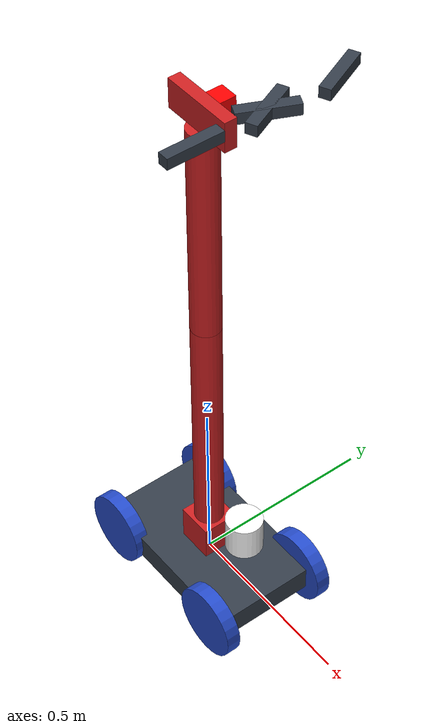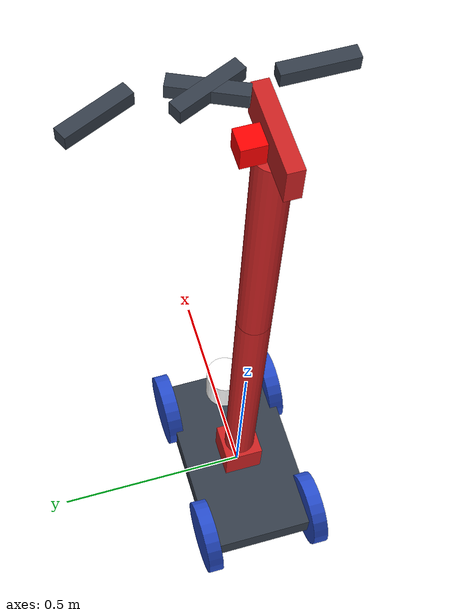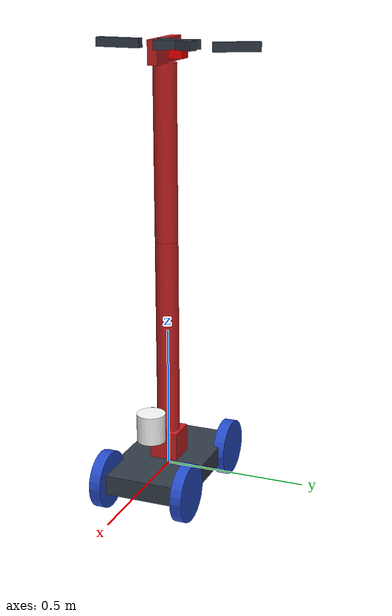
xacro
<?xml version="1.0" ?>
<robot name="my_robot">
    <material name="black">
        <color rgba="0.0 0.0 0.0 1.0" />
    </material>
    <material name="blue">
        <color rgba="0.203125 0.23828125 0.28515625 1.0" />
    </material>
    <material name="green">
        <color rgba="0.0 0.8 0.0 1.0" />
    </material>
    <material name="grey">
        <color rgba="0.2 0.2 0.2 1.0" />
    </material>
    <material name="orange">
        <color rgba="1.0 0.423529411765 0.0392156862745 1.0" />
    </material>
    <material name="brown">
        <color rgba="0.870588235294 0.811764705882 0.764705882353 1.0" />
    </material>
    <material name="red">
        <color rgba="0.80078125 0.12890625 0.1328125 1.0" />
    </material>
    <material name="white">
        <color rgba="1.0 1.0 1.0 1.0" />
    </material>
    <gazebo reference="base_link">
        <material>Gazebo/Orange</material>
    </gazebo>
    <gazebo reference="link_left_wheel">
        <material>Gazebo/Blue</material>
    </gazebo>
    <gazebo reference="link_right_wheel">
        <material>Gazebo/Blue</material>
    </gazebo>
    <gazebo reference="link_frontleft_wheel">
        <material>Gazebo/Blue</material>
    </gazebo>
    <gazebo reference="link_frontright_wheel">
        <material>Gazebo/Blue</material>
    </gazebo>
    <gazebo reference="arm_base_link">
        <material>Gazebo/Red</material>
    </gazebo>
    <gazebo reference="arm_link_01">
        <material>Gazebo/Red</material>
    </gazebo>
    <gazebo reference="arm_link_02">
        <material>Gazebo/Red</material>
    </gazebo>
    <gazebo reference="arm_link_03">
        <material>Gazebo/Red</material>
    </gazebo>
    <gazebo reference="arm_link_03">
        <material>Gazebo/Red</material>
    </gazebo>
    <gazebo reference="camera_link">
        <material>Gazebo/White</material>
    </gazebo>
    <gazebo reference="arm_joint_02">
        <provideFeedback>true</provideFeedback>
    </gazebo>
    <!-- The ft_sensor plugin -->
    <gazebo>
        <plugin filename="libgazebo_ros_ft_sensor.so" name="ft_sensor">
            <updateRate>100.0</updateRate>
            <topicName>ft_sensor_topic</topicName>
            <jointName>arm_joint_02</jointName>
        </plugin>
    </gazebo>
    <gazebo>
        <plugin filename="libgazebo_ros_skid_steer_drive.so" name="skid_steer_drive_controller">
            <updateRate>100.0</updateRate>
            <robotNamespace>/</robotNamespace>
            <leftFrontJoint>joint_frontright_wheel</leftFrontJoint>
            <rightFrontJoint>joint_frontleft_wheel</rightFrontJoint>
            <leftRearJoint>joint_right_wheel</leftRearJoint>
            <rightRearJoint>joint_left_wheel</rightRearJoint>
            <wheelSeparation>0.4</wheelSeparation>
            <wheelDiameter>0.215</wheelDiameter>
            <robotBaseFrame>base_link</robotBaseFrame>
            <torque>20</torque>
            <topicName>cmd_vel</topicName>
            <broadcastTF>true</broadcastTF>
            <publishOdomTF>true</publishOdomTF>
        </plugin>
    </gazebo>
    <gazebo reference="laser">
        <sensor name="head_hokuyo_sensor" type="ray">
            <pose>0 0 0 0 0 0</pose>
            <visualize>false</visualize>
            <update_rate>20</update_rate>
            <ray>
                <scan>
                    <horizontal>
                        <samples>720</samples>
                        <resolution>1</resolution>
                        <min_angle>-1.570796</min_angle>
                        <max_angle>1.570796</max_angle>
                    </horizontal>
                </scan>
                <range>
                    <min>0.10</min>
                    <max>10.0</max>
                    <resolution>0.01</resolution>
                </range>
                <noise>
                    <type>gaussian</type>
                    <mean>0.0</mean>
                    <stddev>0.01</stddev>
                </noise>
            </ray>
            <plugin filename="libgazebo_ros_laser.so" name="gazebo_ros_head_hokuyo_controller">
                <topicName>my_robot/laser/scan</topicName>
                <frameName>laser</frameName>
            </plugin>
        </sensor>
    </gazebo>
    <gazebo>
        <plugin filename="libgazebo_ros_control.so" name="gazebo_ros_control">
            <robotNamespace>my_robot</robotNamespace>
            <robotSimType>gazebo_ros_control/DefaultRobotHWSim</robotSimType>
            <legacyModeNS>true</legacyModeNS>
        </plugin>
    </gazebo>
    <!-- camera -->
    <gazebo reference="camera_link">
        <sensor name="camera1" type="camera">
            <update_rate>30.0</update_rate>
            <camera name="head">
                <horizontal_fov>1.3962634</horizontal_fov>
                <image>
                    <width>800</width>
                    <height>800</height>
                    <format>R8G8B8</format>
                </image>
                <clip>
                    <near>0.02</near>
                    <far>300</far>
                </clip>
                <noise>
                    <type>gaussian</type>
                    <mean>0.0</mean>
                    <stddev>0.007</stddev>
                </noise>
            </camera>
            <plugin filename="libgazebo_ros_camera.so" name="camera_controller">
                <alwaysOn>true</alwaysOn>
                <updateRate>0.0</updateRate>
                <cameraName>robot/camera1</cameraName>
                <imageTopicName>image_raw</imageTopicName>
                <cameraInfoTopicName>camera_info</cameraInfoTopicName>
                <frameName>camera_link</frameName>
                <hackBaseline>0.07</hackBaseline>
                <distortionK1>0.0</distortionK1>
                <distortionK2>0.0</distortionK2>
                <distortionK3>0.0</distortionK3>
                <distortionT1>0.0</distortionT1>
                <distortionT2>0.0</distortionT2>
            </plugin>
        </sensor>
    </gazebo>
    <link name="base_link">
        <!-- pose and inertial -->
        <pose>0 0 0.1 0 0 0</pose>

        <inertial>
            <mass value="5" />
            <origin rpy="0 0 0" xyz="0 0 0.1" />
            <inertia ixx="0.0395416666667" ixy="0" ixz="0" iyy="0.106208333333" iyz="0" izz="0.106208333333" />
        </inertial>

        <collision name="collision_chassis">
            <geometry>
                <box size="0.5 0.3 0.07" />
            </geometry>
        </collision>
        <visual>
            <origin rpy="0 0 0" xyz="0 0 0" />
            <geometry>
                <box size="0.5 0.3 0.07" />
            </geometry>
            <material name="blue" />
        </visual>
    </link>
    <!-- Create wheels -->
    <link name="link_right_wheel">

        <inertial>
            <mass value="0.2" />
            <origin rpy="0 1.5707 1.5707" xyz="0 0 0" />
            <inertia ixx="0.000526666666667" ixy="0" ixz="0" iyy="0.000526666666667" iyz="0" izz="0.001" />
        </inertial>

        <collision name="link_right_wheel_collision">
            <origin rpy="0 1.5707 1.5707" xyz="0 0 0" />
            <geometry>
                <cylinder length="0.04" radius="0.1" />
            </geometry>
        </collision>
        <visual name="link_right_wheel_visual">
            <origin rpy="0 1.5707 1.5707" xyz="0 0 0" />
            <geometry>
                <cylinder length="0.04" radius="0.1" />
            </geometry>
        </visual>
    </link>
    <link name="link_left_wheel">

        <inertial>
            <mass value="0.2" />
            <origin rpy="0 1.5707 1.5707" xyz="0 0 0" />
            <inertia ixx="0.000526666666667" ixy="0" ixz="0" iyy="0.000526666666667" iyz="0" izz="0.001" />
        </inertial>

        <collision name="link_right_wheel_collision">
            <origin rpy="0 1.5707 1.5707" xyz="0 0 0" />
            <geometry>
                <cylinder length="0.04" radius="0.1" />
            </geometry>
        </collision>
        <visual name="link_left_wheel_visual">
            <origin rpy="0 1.5707 1.5707" xyz="0 0 0" />
            <geometry>
                <cylinder length="0.04" radius="0.1" />
            </geometry>
        </visual>
    </link>
    <link name="link_frontright_wheel">

        <inertial>
            <mass value="0.2" />
            <origin rpy="0 1.5707 1.5707" xyz="0 0 0" />
            <inertia ixx="0.000526666666667" ixy="0" ixz="0" iyy="0.000526666666667" iyz="0" izz="0.001" />
        </inertial>

        <collision name="link_right_wheel_collision">
            <origin rpy="0 1.5707 1.5707" xyz="0 0 0" />
            <geometry>
                <cylinder length="0.04" radius="0.1" />
            </geometry>
        </collision>
        <visual name="link_frontright_wheel_visual">
            <origin rpy="0 1.5707 1.5707" xyz="0 0 0" />
            <geometry>
                <cylinder length="0.04" radius="0.1" />
            </geometry>
        </visual>
    </link>
    <link name="link_frontleft_wheel">

        <inertial>
            <mass value="0.2" />
            <origin rpy="0 1.5707 1.5707" xyz="0 0 0" />
            <inertia ixx="0.000526666666667" ixy="0" ixz="0" iyy="0.000526666666667" iyz="0" izz="0.001" />
        </inertial>

        <collision name="link_right_wheel_collision">
            <origin rpy="0 1.5707 1.5707" xyz="0 0 0" />
            <geometry>
                <cylinder length="0.04" radius="0.1" />
            </geometry>
        </collision>
        <visual name="link_frontleft_wheel_visual">
            <origin rpy="0 1.5707 1.5707" xyz="0 0 0" />
            <geometry>
                <cylinder length="0.04" radius="0.1" />
            </geometry>
        </visual>
    </link>
    <joint name="joint_right_wheel" type="continuous">
        <origin rpy="0 0 0" xyz="-0.20 0.15 0" />
        <child link="link_right_wheel" />
        <parent link="base_link" />
        <axis rpy="0 0 0" xyz="0 1 0" />
        <limit effort="10000" velocity="1000" />
        <joint_properties damping="1.0" friction="1.0" />
    </joint>
    <joint name="joint_left_wheel" type="continuous">
        <origin rpy="0 0 0" xyz="-0.20 -0.15 0" />
        <child link="link_left_wheel" />
        <parent link="base_link" />
        <axis rpy="0 0 0" xyz="0 1 0" />
        <limit effort="10000" velocity="1000" />
        <joint_properties damping="1.0" friction="1.0" />
    </joint>
    <joint name="joint_frontright_wheel" type="continuous">
        <origin rpy="0 0 0" xyz="0.20 0.15 0" />
        <child link="link_frontright_wheel" />
        <parent link="base_link" />
        <axis rpy="0 0 0" xyz="0 1 0" />
        <limit effort="10000" velocity="1000" />
        <joint_properties damping="1.0" friction="1.0" />
    </joint>
    <joint name="joint_frontleft_wheel" type="continuous">
        <origin rpy="0 0 0" xyz="0.20 -0.15 0" />
        <child link="link_frontleft_wheel" />
        <parent link="base_link" />
        <axis rpy="0 0 0" xyz="0 1 0" />
        <limit effort="10000" velocity="1000" />
        <joint_properties damping="1.0" friction="1.0" />
    </joint>
    <link name="laser">

        <inertial>
            <origin rpy="0 0 0" xyz="0 0 0" />
            <mass value="1" />
            <inertia ixx="0.0014583333333333334" ixy="0" ixz="0" iyy="0.0014583333333333334" iyz="0" izz="0.0012500000000000002" />
        </inertial>

        <visual>
            <origin rpy="0 0 0" xyz="0 0 0" />
            <geometry>
                <cylinder length="0.1" radius="0.05" />
            </geometry>
            <material name="white" />
        </visual>
        <collision>
            <origin rpy="0 0 0" xyz="0 0 0" />
            <geometry>
                <cylinder length="0.1" radius="0.05" />
            </geometry>
        </collision>
    </link>
    <joint name="joint_laser" type="fixed">
        <origin rpy="0 0 0" xyz="0.15 0 0.20" />
        <parent link="base_link" />
        <child link="laser" />
    </joint>
    <!--arm definition -->
    <link name="arm_base_link">

        <inertial>
            <mass value="0.1" />
            <origin rpy="0 0 0" xyz="0 0 0" />
            <inertia ixx="0.0000416666667" ixy="0" ixz="0" iyy="0.0000416666667" iyz="0" izz="0.0000416666667" />
        </inertial>

        <collision>
            <origin rpy="0 0 0" xyz="0 0 0" />
            <geometry>
                <box size="0.1 0.1 0.1" />
            </geometry>
        </collision>
        <visual>
            <origin rpy="0 0 0" xyz="0 0 0" />
            <geometry>
                <box size="0.1 0.1 0.1" />
            </geometry>
            <material name="red" />
        </visual>
    </link>
    <joint name="arm_base_to_base" type="fixed">
        <origin rpy="0 0 0" xyz="0 0 0.085" />
        <parent link="base_link" />
        <child link="arm_base_link" />
    </joint>
    <link name="arm_link_01">

        <inertial>
            <mass value="0.025" />
            <origin rpy="0 0 0" xyz="0 0 0" />
            <inertia ixx="0.000010279" ixy="0" ixz="0" iyy="0.000010279" iyz="0" izz="0.000007225" />
        </inertial>

        <collision>
            <origin rpy="0 0 0" xyz="0 0 0.30" />
            <geometry>
                <cylinder length="0.70" radius="0.04" />
            </geometry>
        </collision>
        <visual>
            <origin rpy="0 0 0" xyz="0 0 0.30" />
            <geometry>
                <cylinder length="0.70" radius="0.04" />
            </geometry>
            <material name="red" />
        </visual>
    </link>
    <joint name="arm_joint_01" type="revolute">
        <axis xyz="0 0 1" />
        <limit effort="1000.0" lower="-3.14" upper="3.14" velocity="0.2" />
        <origin rpy="0 0 0" xyz="0 0 0.09" />
        <parent link="arm_base_link" />
        <child link="arm_link_01" />
    </joint>
    <link name="arm_link_02">

        <inertial>
            <mass value="0.025" />
            <origin rpy="0 0 0" xyz="0 0 0" />
            <inertia ixx="0.000010279" ixy="0" ixz="0" iyy="0.000010279" iyz="0" izz="0.000007225" />
        </inertial>

        <collision>
            <origin rpy="0 0 0" xyz="0 0 0.30" />
            <geometry>
                <cylinder length="0.6" radius="0.04" />
            </geometry>
        </collision>
        <visual>
            <origin rpy="0 0 0" xyz="0 0 0.30" />
            <geometry>
                <cylinder length="0.6" radius="0.04" />
            </geometry>
            <material name="red" />
        </visual>
    </link>
    <joint name="arm_joint_02" type="revolute">
        <axis xyz="1 0 0" />
        <limit effort="1000.0" lower="-1.8" upper="1.8" velocity="0.2" />
        <origin rpy="0 0 0" xyz="0 0 0.65" />
        <parent link="arm_link_01" />
        <child link="arm_link_02" />
    </joint>
    <link name="arm_link_03">

    <inertial>
            <mass value="0.025" />
            <origin rpy="0 0 0" xyz="0 0 0" />
            <inertia ixx="0.000010279" ixy="0" ixz="0" iyy="0.000010279" iyz="0" izz="0.000007225" />
        </inertial>

        <collision>
            <origin rpy="0 0 1.57" xyz="0 0 0.04" />
            <geometry>
                <box size="0.034 0.2 0.08" />
            </geometry>
        </collision>
        <visual>
            <origin rpy="0 0 1.57" xyz="0 0 0.04" />
            <geometry>
                <box size="0.034 0.2 0.08" />
            </geometry>
            <material name="red" />
        </visual>
    </link>
    <joint name="arm_joint_03" type="revolute">
        <axis xyz="1 0 0" />
        <limit effort="1000.0" lower="-1.4" upper="1.4" velocity="0.5" />
        <origin rpy="0 0 0" xyz="0 0 0.60" />
        <parent link="arm_link_02" />
        <child link="arm_link_03" />
    </joint>
    <link name="camera_link">
        <collision>
            <origin rpy="0 0 0" xyz="0 0 0" />
            <geometry>
                <box size="0.05 0.05 0.05" />
            </geometry>
        </collision>
        <visual>
            <origin rpy="0 0 0" xyz="0 0 0" />
            <geometry>
                <box size="0.05 0.05 0.05" />
            </geometry>
            <material name="red">
                <color rgba="1 0 0 1" />
            </material>
        </visual>

        <inertial>
            <mass value="1e-5" />
            <origin rpy="0 0 0" xyz="0 0 0" />
            <inertia ixx="1e-6" ixy="0" ixz="0" iyy="1e-6" iyz="0" izz="1e-6" />
        </inertial>

    </link>
    <joint name="camera_joint" type="fixed">
        <axis xyz="0 0 0" />
        <origin rpy="0 0 1.57" xyz="0 0.048 0.04" />
        <parent link="arm_link_03" />
        <child link="camera_link" />
    </joint>
    <!--gripper-->

    <!--left finger-->
    <link name="left_finger_lower">
        <pose>0 0 0.1 0 0 0</pose>
        <inertial>
            <mass value="5" />
            <origin rpy="0 0 0" xyz="0 0 0.1" />
            <inertia ixx="0.0395416666667" ixy="0" ixz="0" iyy="0.106208333333" iyz="0" izz="0.106208333333" />
        </inertial>

        <collision name="collision_chassis">
            <geometry>
                <box size="0.03 0.06 0.03" />
            </geometry>
        </collision>
        <visual>
            <origin rpy="0 0 2" xyz="0 0 0" />
            <geometry>
                <box size="0.03 0.15 0.03" />
            </geometry>
            <material name="blue" />
        </visual>
    </link>
    <joint name="arm_joint3_to_left_finger" type = "revolute">
        <limit effort="1000.0" lower="-1.4" upper="1.4" velocity="0.5" />
        <axis xyz="0 0 1"/>
        <origin rpy="0 0 1.57" xyz="0.11 0.09 0.07"/>
        <parent link="arm_link_03"/>
        <child link="left_finger_lower"/>
    </joint>

    <link name="left_finger_upper">
        <pose>0 0 0.1 0 0 0</pose>
        <inertial>
            <mass value="5" />
            <origin rpy="0 0 0" xyz="0 0 0.1" />
            <inertia ixx="0.0395416666667" ixy="0" ixz="0" iyy="0.106208333333" iyz="0" izz="0.106208333333" />
        </inertial>

        <collision name="collision_chassis">
            <geometry>
                <box size="0.03 0.06 0.03" />
            </geometry>
        </collision>
        <visual>
            <origin rpy="0 0 0" xyz="0 0 0" />
            <geometry>
                <box size="0.03 0.15 0.03" />
            </geometry>
            <material name="blue" />
        </visual>
    </link>

    <joint name="left_finger_joint" type="revolute">
        <limit effort="1000.0" lower="-1.4" upper="0.4" velocity="0.5" />
        <axis xyz="0 0 1"/>
        <origin rpy="0 0 2" xyz="0.2 0.0 0"/>
        <parent link="left_finger_lower"/>
        <child link="left_finger_upper"/>
    </joint>

    <!--right finger-->
    <link name="right_finger_lower">
        <pose>0 0 0.1 0 0 0</pose>
        <inertial>
            <mass value="5" />
            <origin rpy="0 0 0" xyz="0 0 0.1" />
            <inertia ixx="0.0395416666667" ixy="0" ixz="0" iyy="0.106208333333" iyz="0" izz="0.106208333333" />
        </inertial>

        <collision name="collision_chassis">
            <geometry>
                <box size="0.03 0.06 0.03" />
            </geometry>
        </collision>
        <visual>
            <origin rpy="0 0 -2" xyz="0 0 0" />
            <geometry>
                <box size="0.03 0.15 0.03" />
            </geometry>
            <material name="blue" />
        </visual>
    </link>

    <joint name="arm_joint3_to_right_finger" type = "revolute">
        <limit effort="1000.0" lower="-1.4" upper="1.4" velocity="0.5" />
        <axis xyz="0 0 1"/>
        <origin rpy="0 0 1.57" xyz="0.11 0.09 0.07"/>
        <parent link="arm_link_03"/>
        <child link="right_finger_lower"/>
    </joint>

    <link name="right_finger_upper">
        <pose>0 0 0.1 0 0 0</pose>
        <inertial>
            <mass value="5" />
            <origin rpy="0 0 0" xyz="0 0 0.1" />
            <inertia ixx="0.0395416666667" ixy="0" ixz="0" iyy="0.106208333333" iyz="0" izz="0.106208333333" />
        </inertial>

        <collision name="collision_chassis">
            <geometry>
                <box size="0.03 0.06 0.03" />
            </geometry>
        </collision>
        <visual>
            <origin rpy="0 0 0" xyz="0 0 0" />
            <geometry>
                <box size="0.03 0.15 0.03" />
            </geometry>
            <material name="blue" />
        </visual>
    </link>

    <joint name="right_finger_joint" type="revolute">
        <axis xyz="0 0 1"/>
        <limit effort="1000.0" lower="-0.4" upper="1.4" velocity="0.5" />
        <origin rpy="0 0 -1.57" xyz="-0.2 0.0 0"/>
        <parent link="right_finger_lower"/>
        <child link="right_finger_upper"/>
    </joint>

    <!--end_of_gripper-->
    <transmission name="arm_joint_01_trans">
        <type>transmission_interface/SimpleTransmission</type>
        <joint name="arm_joint_01">
            <hardwareInterface>hardware_interface/EffortJointInterface</hardwareInterface>
        </joint>
        <actuator name="motor1">
            <hardwareInterface>hardware_interface/EffortJointInterface</hardwareInterface>
            <mechanicalInterface>1</mechanicalInterface>
        </actuator>
    </transmission>

    <transmission name="arm_joint_02_trans">
        <type>transmission_interface/SimpleTransmission</type>
        <joint name="arm_joint_02">
            <hardwareInterface>hardware_interface/EffortJointInterface</hardwareInterface>
        </joint>
        <actuator name="motor2">
            <hardwareInterface>hardware_interface/EffortJointInterface</hardwareInterface>
            <mechanicalInterface>1</mechanicalInterface>
        </actuator>
    </transmission>

    <transmission name="arm_joint_03_trans">
        <type>transmission_interface/SimpleTransmission</type>
        <joint name="arm_joint_03">
            <hardwareInterface>hardware_interface/EffortJointInterface</hardwareInterface>
        </joint>
        <actuator name="motor3">
            <hardwareInterface>hardware_interface/EffortJointInterface</hardwareInterface>
            <mechanicalInterface>1</mechanicalInterface>
        </actuator>
    </transmission>

    <transmission name="trans_joint_right_wheel">
        <type>transmission_interface/SimpleTransmission</type>
        <joint name="joint_right_wheel">
            <hardwareInterface>hardware_interface/EffortJointInterface</hardwareInterface>
        </joint>
        <actuator name="joint_right_wheel_motor">
            <hardwareInterface>hardware_interface/EffortJointInterface</hardwareInterface>
            <mechanicalReduction>1</mechanicalReduction>
        </actuator>
    </transmission>

    <transmission name="trans_joint_left_wheel">
        <type>transmission_interface/SimpleTransmission</type>
        <joint name="joint_left_wheel">
            <hardwareInterface>hardware_interface/EffortJointInterface</hardwareInterface>
        </joint>
        <actuator name="joint_left_wheel_motor">
            <hardwareInterface>hardware_interface/EffortJointInterface</hardwareInterface>
            <mechanicalReduction>1</mechanicalReduction>
        </actuator>
    </transmission>

    <transmission name="trans_joint_frontright_wheel">
        <type>transmission_interface/SimpleTransmission</type>
        <joint name="joint_frontright_wheel">
            <hardwareInterface>hardware_interface/EffortJointInterface</hardwareInterface>
        </joint>
        <actuator name="joint_frontright_wheel_motor">
            <hardwareInterface>hardware_interface/EffortJointInterface</hardwareInterface>
            <mechanicalReduction>1</mechanicalReduction>
        </actuator>
    </transmission>

    <transmission name="trans_joint_frontleft_wheel">
        <type>transmission_interface/SimpleTransmission</type>
        <joint name="joint_frontleft_wheel">
            <hardwareInterface>hardware_interface/EffortJointInterface</hardwareInterface>
        </joint>
        <actuator name="joint_frontleft_wheel_motor">
            <hardwareInterface>hardware_interface/EffortJointInterface</hardwareInterface>
            <mechanicalReduction>1</mechanicalReduction>
        </actuator>
    </transmission>

    <transmission name="trans_arm_joint_01">
        <type>transmission_interface/SimpleTransmission</type>
        <joint name="arm_joint_01">
            <hardwareInterface>hardware_interface/EffortJointInterface</hardwareInterface>
        </joint>
        <actuator name="arm_joint_01_motor">
            <hardwareInterface>hardware_interface/EffortJointInterface</hardwareInterface>
            <mechanicalReduction>1</mechanicalReduction>
        </actuator>
    </transmission>

    <transmission name="trans_arm_joint_02">
        <type>transmission_interface/SimpleTransmission</type>
        <joint name="arm_joint_02">
            <hardwareInterface>hardware_interface/EffortJointInterface</hardwareInterface>
        </joint>
        <actuator name="arm_joint_02_motor">
            <hardwareInterface>hardware_interface/EffortJointInterface</hardwareInterface>
            <mechanicalReduction>1</mechanicalReduction>
        </actuator>
    </transmission>

    <transmission name="trans_arm_joint_03">
        <type>transmission_interface/SimpleTransmission</type>
        <joint name="arm_joint_03">
            <hardwareInterface>hardware_interface/EffortJointInterface</hardwareInterface>
        </joint>
        <actuator name="arm_joint_03_motor">
            <hardwareInterface>hardware_interface/EffortJointInterface</hardwareInterface>
            <mechanicalReduction>1</mechanicalReduction>
        </actuator>
    </transmission>

    <gazebo>
        <plugin name="gazebo_ros_control" filename="libgazebo_ros_control.so">
            <robotNamespace>/</robotNamespace>
        </plugin>
    </gazebo>
</robot>
